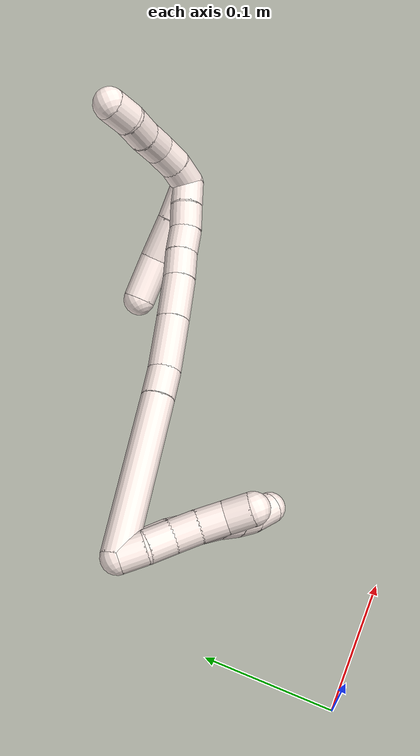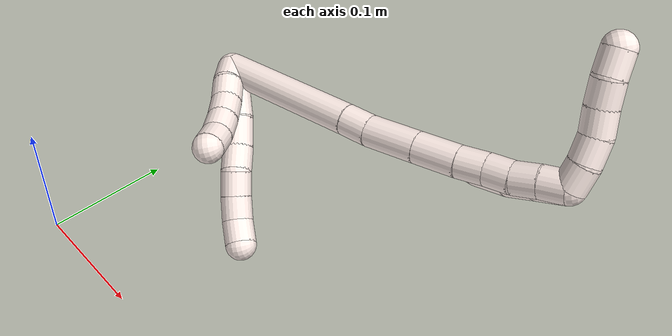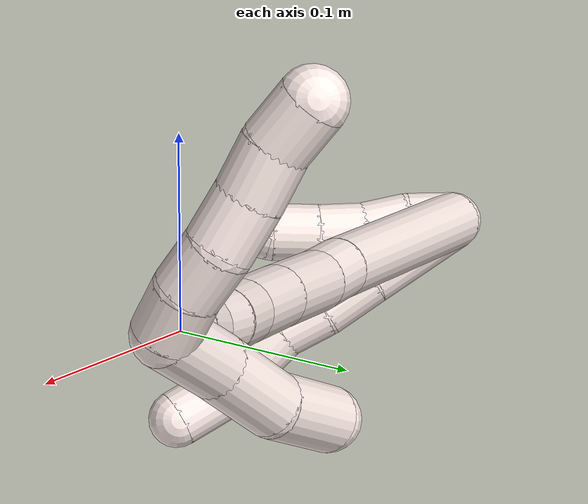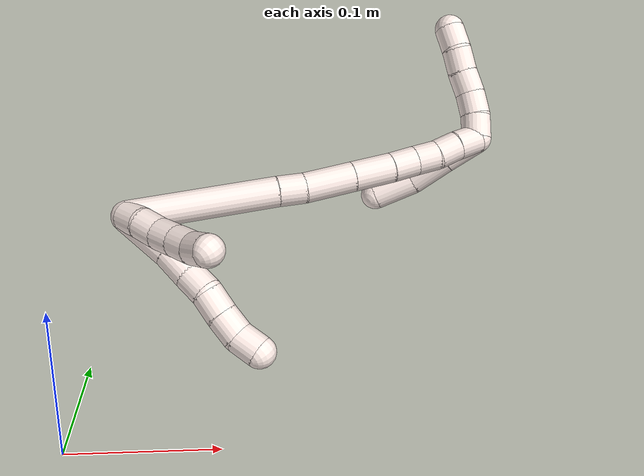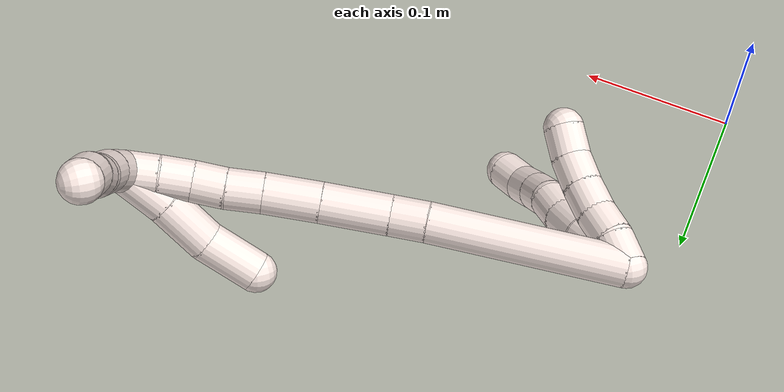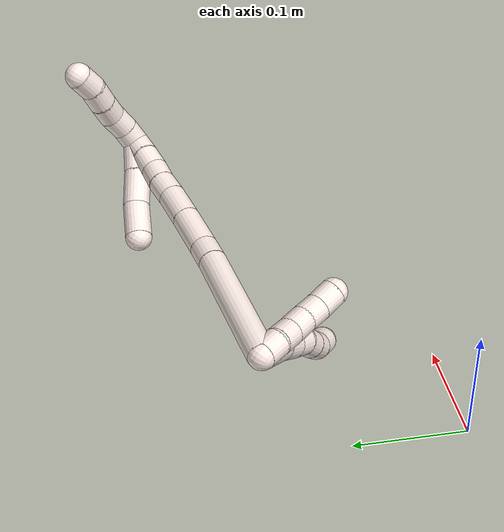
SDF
<sdf version="1.7">
 <world name="default">
  <model name="11">
   <static>0</static>
   <link name="11">
    <collision name="collision-cylinder-e_1_2_8">
     <pose>0.018134 -0.013308 0.0005 1.53324 0.937369 0.907434</pose>
     <geometry><cylinder><radius>0.0125</radius><length>0.044996</length></cylinder></geometry>
     <surface>
      <friction><ode><mu>1.16</mu><mu2>1.16</mu2><slip1>0</slip1><slip2>0</slip2></ode></friction>
      <contact><ode><kp>1e+06</kp><kd>1</kd><max_vel>0</max_vel><min_depth>0.001</min_depth></ode></contact>
     </surface>
    </collision>
    <visual name="visual-cylinder-e_1_2_8">
     <pose>0.018134 -0.013308 0.0005 1.53324 0.937369 0.907434</pose>
     <geometry><cylinder><radius>0.0125</radius><length>0.044996</length></cylinder></geometry>
     <material><ambient>1 0.933333 0.909804 1</ambient></material>
    </visual>
    <collision name="collision-cylinder-e_2_8_9">
     <pose>0.046304 -0.033647 -0.000119 1.72858 0.953782 1.08872</pose>
     <geometry><cylinder><radius>0.0125</radius><length>0.024613</length></cylinder></geometry>
     <surface>
      <friction><ode><mu>1.16</mu><mu2>1.16</mu2><slip1>0</slip1><slip2>0</slip2></ode></friction>
      <contact><ode><kp>1e+06</kp><kd>1</kd><max_vel>0</max_vel><min_depth>0.001</min_depth></ode></contact>
     </surface>
    </collision>
    <visual name="visual-cylinder-e_2_8_9">
     <pose>0.046304 -0.033647 -0.000119 1.72858 0.953782 1.08872</pose>
     <geometry><cylinder><radius>0.0125</radius><length>0.024613</length></cylinder></geometry>
     <material><ambient>1 0.933333 0.909804 1</ambient></material>
    </visual>
    <collision name="collision-cylinder-e_3_9_10">
     <pose>0.063861 -0.047433 -0.00249 1.75408 0.830527 0.974939</pose>
     <geometry><cylinder><radius>0.0125</radius><length>0.020369</length></cylinder></geometry>
     <surface>
      <friction><ode><mu>1.16</mu><mu2>1.16</mu2><slip1>0</slip1><slip2>0</slip2></ode></friction>
      <contact><ode><kp>1e+06</kp><kd>1</kd><max_vel>0</max_vel><min_depth>0.001</min_depth></ode></contact>
     </surface>
    </collision>
    <visual name="visual-cylinder-e_3_9_10">
     <pose>0.063861 -0.047433 -0.00249 1.75408 0.830527 0.974939</pose>
     <geometry><cylinder><radius>0.0125</radius><length>0.020369</length></cylinder></geometry>
     <material><ambient>1 0.933333 0.909804 1</ambient></material>
    </visual>
    <collision name="collision-cylinder-e_4_10_11">
     <pose>0.080431 -0.058124 -0.00536 1.96086 1.13123 1.51672</pose>
     <geometry><cylinder><radius>0.0125</radius><length>0.020005</length></cylinder></geometry>
     <surface>
      <friction><ode><mu>1.16</mu><mu2>1.16</mu2><slip1>0</slip1><slip2>0</slip2></ode></friction>
      <contact><ode><kp>1e+06</kp><kd>1</kd><max_vel>0</max_vel><min_depth>0.001</min_depth></ode></contact>
     </surface>
    </collision>
    <visual name="visual-cylinder-e_4_10_11">
     <pose>0.080431 -0.058124 -0.00536 1.96086 1.13123 1.51672</pose>
     <geometry><cylinder><radius>0.0125</radius><length>0.020005</length></cylinder></geometry>
     <material><ambient>1 0.933333 0.909804 1</ambient></material>
    </visual>
    <collision name="collision-cylinder-e_5_11_12">
     <pose>0.098552 -0.066193 -0.007882 1.78603 1.13448 1.33897</pose>
     <geometry><cylinder><radius>0.0125</radius><length>0.020014</length></cylinder></geometry>
     <surface>
      <friction><ode><mu>1.16</mu><mu2>1.16</mu2><slip1>0</slip1><slip2>0</slip2></ode></friction>
      <contact><ode><kp>1e+06</kp><kd>1</kd><max_vel>0</max_vel><min_depth>0.001</min_depth></ode></contact>
     </surface>
    </collision>
    <visual name="visual-cylinder-e_5_11_12">
     <pose>0.098552 -0.066193 -0.007882 1.78603 1.13448 1.33897</pose>
     <geometry><cylinder><radius>0.0125</radius><length>0.020014</length></cylinder></geometry>
     <material><ambient>1 0.933333 0.909804 1</ambient></material>
    </visual>
    <collision name="collision-cylinder-e_6_12_6">
     <pose>0.11527 -0.076715 -0.007949 1.44063 0.870486 0.774908</pose>
     <geometry><cylinder><radius>0.0125</radius><length>0.020003</length></cylinder></geometry>
     <surface>
      <friction><ode><mu>1.16</mu><mu2>1.16</mu2><slip1>0</slip1><slip2>0</slip2></ode></friction>
      <contact><ode><kp>1e+06</kp><kd>1</kd><max_vel>0</max_vel><min_depth>0.001</min_depth></ode></contact>
     </surface>
    </collision>
    <visual name="visual-cylinder-e_6_12_6">
     <pose>0.11527 -0.076715 -0.007949 1.44063 0.870486 0.774908</pose>
     <geometry><cylinder><radius>0.0125</radius><length>0.020003</length></cylinder></geometry>
     <material><ambient>1 0.933333 0.909804 1</ambient></material>
    </visual>
    <collision name="collision-cylinder-e_1_2_13">
     <pose>0.003666 -0.009277 -0.000703 1.64637 0.375312 0.404037</pose>
     <geometry><cylinder><radius>0.0125</radius><length>0.02</length></cylinder></geometry>
     <surface>
      <friction><ode><mu>1.16</mu><mu2>1.16</mu2><slip1>0</slip1><slip2>0</slip2></ode></friction>
      <contact><ode><kp>1e+06</kp><kd>1</kd><max_vel>0</max_vel><min_depth>0.001</min_depth></ode></contact>
     </surface>
    </collision>
    <visual name="visual-cylinder-e_1_2_13">
     <pose>0.003666 -0.009277 -0.000703 1.64637 0.375312 0.404037</pose>
     <geometry><cylinder><radius>0.0125</radius><length>0.02</length></cylinder></geometry>
     <material><ambient>1 0.933333 0.909804 1</ambient></material>
    </visual>
    <collision name="collision-cylinder-e_2_13_14">
     <pose>0.012734 -0.026968 -0.001563 1.58963 0.57072 0.580975</pose>
     <geometry><cylinder><radius>0.0125</radius><length>0.02</length></cylinder></geometry>
     <surface>
      <friction><ode><mu>1.16</mu><mu2>1.16</mu2><slip1>0</slip1><slip2>0</slip2></ode></friction>
      <contact><ode><kp>1e+06</kp><kd>1</kd><max_vel>0</max_vel><min_depth>0.001</min_depth></ode></contact>
     </surface>
    </collision>
    <visual name="visual-cylinder-e_2_13_14">
     <pose>0.012734 -0.026968 -0.001563 1.58963 0.57072 0.580975</pose>
     <geometry><cylinder><radius>0.0125</radius><length>0.02</length></cylinder></geometry>
     <material><ambient>1 0.933333 0.909804 1</ambient></material>
    </visual>
    <collision name="collision-cylinder-e_3_14_15">
     <pose>0.021992 -0.044603 -0.002057 1.60713 0.39586 0.410111</pose>
     <geometry><cylinder><radius>0.0125</radius><length>0.02</length></cylinder></geometry>
     <surface>
      <friction><ode><mu>1.16</mu><mu2>1.16</mu2><slip1>0</slip1><slip2>0</slip2></ode></friction>
      <contact><ode><kp>1e+06</kp><kd>1</kd><max_vel>0</max_vel><min_depth>0.001</min_depth></ode></contact>
     </surface>
    </collision>
    <visual name="visual-cylinder-e_3_14_15">
     <pose>0.021992 -0.044603 -0.002057 1.60713 0.39586 0.410111</pose>
     <geometry><cylinder><radius>0.0125</radius><length>0.02</length></cylinder></geometry>
     <material><ambient>1 0.933333 0.909804 1</ambient></material>
    </visual>
    <collision name="collision-cylinder-e_4_15_16">
     <pose>0.029116 -0.063235 -0.00325 1.66168 0.332895 0.363945</pose>
     <geometry><cylinder><radius>0.0125</radius><length>0.02</length></cylinder></geometry>
     <surface>
      <friction><ode><mu>1.16</mu><mu2>1.16</mu2><slip1>0</slip1><slip2>0</slip2></ode></friction>
      <contact><ode><kp>1e+06</kp><kd>1</kd><max_vel>0</max_vel><min_depth>0.001</min_depth></ode></contact>
     </surface>
    </collision>
    <visual name="visual-cylinder-e_4_15_16">
     <pose>0.029116 -0.063235 -0.00325 1.66168 0.332895 0.363945</pose>
     <geometry><cylinder><radius>0.0125</radius><length>0.02</length></cylinder></geometry>
     <material><ambient>1 0.933333 0.909804 1</ambient></material>
    </visual>
    <collision name="collision-cylinder-e_5_16_5">
     <pose>0.033376 -0.082546 -0.005122 1.67294 0.09942 0.110112</pose>
     <geometry><cylinder><radius>0.0125</radius><length>0.02</length></cylinder></geometry>
     <surface>
      <friction><ode><mu>1.16</mu><mu2>1.16</mu2><slip1>0</slip1><slip2>0</slip2></ode></friction>
      <contact><ode><kp>1e+06</kp><kd>1</kd><max_vel>0</max_vel><min_depth>0.001</min_depth></ode></contact>
     </surface>
    </collision>
    <visual name="visual-cylinder-e_5_16_5">
     <pose>0.033376 -0.082546 -0.005122 1.67294 0.09942 0.110112</pose>
     <geometry><cylinder><radius>0.0125</radius><length>0.02</length></cylinder></geometry>
     <material><ambient>1 0.933333 0.909804 1</ambient></material>
    </visual>
    <collision name="collision-cylinder-e_1_2_17">
     <pose>0.021874 -0.028502 0.047864 0.537085 0.374158 0.104089</pose>
     <geometry><cylinder><radius>0.0125</radius><length>0.119696</length></cylinder></geometry>
     <surface>
      <friction><ode><mu>1.16</mu><mu2>1.16</mu2><slip1>0</slip1><slip2>0</slip2></ode></friction>
      <contact><ode><kp>1e+06</kp><kd>1</kd><max_vel>0</max_vel><min_depth>0.001</min_depth></ode></contact>
     </surface>
    </collision>
    <visual name="visual-cylinder-e_1_2_17">
     <pose>0.021874 -0.028502 0.047864 0.537085 0.374158 0.104089</pose>
     <geometry><cylinder><radius>0.0125</radius><length>0.119696</length></cylinder></geometry>
     <material><ambient>1 0.933333 0.909804 1</ambient></material>
    </visual>
    <collision name="collision-cylinder-e_2_17_18">
     <pose>0.048231 -0.061925 0.104581 0.507353 0.416746 0.109528</pose>
     <geometry><cylinder><radius>0.0125</radius><length>0.022153</length></cylinder></geometry>
     <surface>
      <friction><ode><mu>1.16</mu><mu2>1.16</mu2><slip1>0</slip1><slip2>0</slip2></ode></friction>
      <contact><ode><kp>1e+06</kp><kd>1</kd><max_vel>0</max_vel><min_depth>0.001</min_depth></ode></contact>
     </surface>
    </collision>
    <visual name="visual-cylinder-e_2_17_18">
     <pose>0.048231 -0.061925 0.104581 0.507353 0.416746 0.109528</pose>
     <geometry><cylinder><radius>0.0125</radius><length>0.022153</length></cylinder></geometry>
     <material><ambient>1 0.933333 0.909804 1</ambient></material>
    </visual>
    <collision name="collision-cylinder-e_3_18_19">
     <pose>0.05925 -0.075904 0.131052 0.474883 0.318646 0.077735</pose>
     <geometry><cylinder><radius>0.0125</radius><length>0.04172</length></cylinder></geometry>
     <surface>
      <friction><ode><mu>1.16</mu><mu2>1.16</mu2><slip1>0</slip1><slip2>0</slip2></ode></friction>
      <contact><ode><kp>1e+06</kp><kd>1</kd><max_vel>0</max_vel><min_depth>0.001</min_depth></ode></contact>
     </surface>
    </collision>
    <visual name="visual-cylinder-e_3_18_19">
     <pose>0.05925 -0.075904 0.131052 0.474883 0.318646 0.077735</pose>
     <geometry><cylinder><radius>0.0125</radius><length>0.04172</length></cylinder></geometry>
     <material><ambient>1 0.933333 0.909804 1</ambient></material>
    </visual>
    <collision name="collision-cylinder-e_4_19_20">
     <pose>0.0712 -0.092166 0.163215 0.459913 0.322016 0.076005</pose>
     <geometry><cylinder><radius>0.0125</radius><length>0.034222</length></cylinder></geometry>
     <surface>
      <friction><ode><mu>1.16</mu><mu2>1.16</mu2><slip1>0</slip1><slip2>0</slip2></ode></friction>
      <contact><ode><kp>1e+06</kp><kd>1</kd><max_vel>0</max_vel><min_depth>0.001</min_depth></ode></contact>
     </surface>
    </collision>
    <visual name="visual-cylinder-e_4_19_20">
     <pose>0.0712 -0.092166 0.163215 0.459913 0.322016 0.076005</pose>
     <geometry><cylinder><radius>0.0125</radius><length>0.034222</length></cylinder></geometry>
     <material><ambient>1 0.933333 0.909804 1</ambient></material>
    </visual>
    <collision name="collision-cylinder-e_5_20_21">
     <pose>0.079711 -0.103516 0.187507 0.402086 0.284316 0.05832</pose>
     <geometry><cylinder><radius>0.0125</radius><length>0.022071</length></cylinder></geometry>
     <surface>
      <friction><ode><mu>1.16</mu><mu2>1.16</mu2><slip1>0</slip1><slip2>0</slip2></ode></friction>
      <contact><ode><kp>1e+06</kp><kd>1</kd><max_vel>0</max_vel><min_depth>0.001</min_depth></ode></contact>
     </surface>
    </collision>
    <visual name="visual-cylinder-e_5_20_21">
     <pose>0.079711 -0.103516 0.187507 0.402086 0.284316 0.05832</pose>
     <geometry><cylinder><radius>0.0125</radius><length>0.022071</length></cylinder></geometry>
     <material><ambient>1 0.933333 0.909804 1</ambient></material>
    </visual>
    <collision name="collision-cylinder-e_6_21_22">
     <pose>0.085609 -0.112274 0.205679 0.500977 0.283945 0.07311</pose>
     <geometry><cylinder><radius>0.0125</radius><length>0.020008</length></cylinder></geometry>
     <surface>
      <friction><ode><mu>1.16</mu><mu2>1.16</mu2><slip1>0</slip1><slip2>0</slip2></ode></friction>
      <contact><ode><kp>1e+06</kp><kd>1</kd><max_vel>0</max_vel><min_depth>0.001</min_depth></ode></contact>
     </surface>
    </collision>
    <visual name="visual-cylinder-e_6_21_22">
     <pose>0.085609 -0.112274 0.205679 0.500977 0.283945 0.07311</pose>
     <geometry><cylinder><radius>0.0125</radius><length>0.020008</length></cylinder></geometry>
     <material><ambient>1 0.933333 0.909804 1</ambient></material>
    </visual>
    <collision name="collision-cylinder-e_7_22_23">
     <pose>0.089807 -0.120807 0.223204 0.406716 0.139809 0.028875</pose>
     <geometry><cylinder><radius>0.0125</radius><length>0.020015</length></cylinder></geometry>
     <surface>
      <friction><ode><mu>1.16</mu><mu2>1.16</mu2><slip1>0</slip1><slip2>0</slip2></ode></friction>
      <contact><ode><kp>1e+06</kp><kd>1</kd><max_vel>0</max_vel><min_depth>0.001</min_depth></ode></contact>
     </surface>
    </collision>
    <visual name="visual-cylinder-e_7_22_23">
     <pose>0.089807 -0.120807 0.223204 0.406716 0.139809 0.028875</pose>
     <geometry><cylinder><radius>0.0125</radius><length>0.020015</length></cylinder></geometry>
     <material><ambient>1 0.933333 0.909804 1</ambient></material>
    </visual>
    <collision name="collision-cylinder-e_8_23_1">
     <pose>0.093478 -0.128507 0.241342 0.396101 0.228376 0.046023</pose>
     <geometry><cylinder><radius>0.0125</radius><length>0.020113</length></cylinder></geometry>
     <surface>
      <friction><ode><mu>1.16</mu><mu2>1.16</mu2><slip1>0</slip1><slip2>0</slip2></ode></friction>
      <contact><ode><kp>1e+06</kp><kd>1</kd><max_vel>0</max_vel><min_depth>0.001</min_depth></ode></contact>
     </surface>
    </collision>
    <visual name="visual-cylinder-e_8_23_1">
     <pose>0.093478 -0.128507 0.241342 0.396101 0.228376 0.046023</pose>
     <geometry><cylinder><radius>0.0125</radius><length>0.020113</length></cylinder></geometry>
     <material><ambient>1 0.933333 0.909804 1</ambient></material>
    </visual>
    <collision name="collision-cylinder-e_1_1_24">
     <pose>0.097567 -0.120545 0.240089 -2.29045 0.115553 -0.253842</pose>
     <geometry><cylinder><radius>0.0125</radius><length>0.031434</length></cylinder></geometry>
     <surface>
      <friction><ode><mu>1.16</mu><mu2>1.16</mu2><slip1>0</slip1><slip2>0</slip2></ode></friction>
      <contact><ode><kp>1e+06</kp><kd>1</kd><max_vel>0</max_vel><min_depth>0.001</min_depth></ode></contact>
     </surface>
    </collision>
    <visual name="visual-cylinder-e_1_1_24">
     <pose>0.097567 -0.120545 0.240089 -2.29045 0.115553 -0.253842</pose>
     <geometry><cylinder><radius>0.0125</radius><length>0.031434</length></cylinder></geometry>
     <material><ambient>1 0.933333 0.909804 1</ambient></material>
    </visual>
    <collision name="collision-cylinder-e_2_24_25">
     <pose>0.102209 -0.095507 0.219863 -2.21249 0.168856 -0.334596</pose>
     <geometry><cylinder><radius>0.0125</radius><length>0.033678</length></cylinder></geometry>
     <surface>
      <friction><ode><mu>1.16</mu><mu2>1.16</mu2><slip1>0</slip1><slip2>0</slip2></ode></friction>
      <contact><ode><kp>1e+06</kp><kd>1</kd><max_vel>0</max_vel><min_depth>0.001</min_depth></ode></contact>
     </surface>
    </collision>
    <visual name="visual-cylinder-e_2_24_25">
     <pose>0.102209 -0.095507 0.219863 -2.21249 0.168856 -0.334596</pose>
     <geometry><cylinder><radius>0.0125</radius><length>0.033678</length></cylinder></geometry>
     <material><ambient>1 0.933333 0.909804 1</ambient></material>
    </visual>
    <collision name="collision-cylinder-e_3_25_4">
     <pose>0.103866 -0.069643 0.197885 -2.33495 -0.067273 0.157386</pose>
     <geometry><cylinder><radius>0.0125</radius><length>0.034888</length></cylinder></geometry>
     <surface>
      <friction><ode><mu>1.16</mu><mu2>1.16</mu2><slip1>0</slip1><slip2>0</slip2></ode></friction>
      <contact><ode><kp>1e+06</kp><kd>1</kd><max_vel>0</max_vel><min_depth>0.001</min_depth></ode></contact>
     </surface>
    </collision>
    <visual name="visual-cylinder-e_3_25_4">
     <pose>0.103866 -0.069643 0.197885 -2.33495 -0.067273 0.157386</pose>
     <geometry><cylinder><radius>0.0125</radius><length>0.034888</length></cylinder></geometry>
     <material><ambient>1 0.933333 0.909804 1</ambient></material>
    </visual>
    <collision name="collision-cylinder-e_1_1_26">
     <pose>0.087849 -0.132029 0.256498 -0.041997 -0.911726 0.020594</pose>
     <geometry><cylinder><radius>0.0125</radius><length>0.02</length></cylinder></geometry>
     <surface>
      <friction><ode><mu>1.16</mu><mu2>1.16</mu2><slip1>0</slip1><slip2>0</slip2></ode></friction>
      <contact><ode><kp>1e+06</kp><kd>1</kd><max_vel>0</max_vel><min_depth>0.001</min_depth></ode></contact>
     </surface>
    </collision>
    <visual name="visual-cylinder-e_1_1_26">
     <pose>0.087849 -0.132029 0.256498 -0.041997 -0.911726 0.020594</pose>
     <geometry><cylinder><radius>0.0125</radius><length>0.02</length></cylinder></geometry>
     <material><ambient>1 0.933333 0.909804 1</ambient></material>
    </visual>
    <collision name="collision-cylinder-e_2_26_27">
     <pose>0.071577 -0.129949 0.267782 -0.339179 -0.991078 0.184586</pose>
     <geometry><cylinder><radius>0.0125</radius><length>0.02</length></cylinder></geometry>
     <surface>
      <friction><ode><mu>1.16</mu><mu2>1.16</mu2><slip1>0</slip1><slip2>0</slip2></ode></friction>
      <contact><ode><kp>1e+06</kp><kd>1</kd><max_vel>0</max_vel><min_depth>0.001</min_depth></ode></contact>
     </surface>
    </collision>
    <visual name="visual-cylinder-e_2_26_27">
     <pose>0.071577 -0.129949 0.267782 -0.339179 -0.991078 0.184586</pose>
     <geometry><cylinder><radius>0.0125</radius><length>0.02</length></cylinder></geometry>
     <material><ambient>1 0.933333 0.909804 1</ambient></material>
    </visual>
    <collision name="collision-cylinder-e_3_27_28">
     <pose>0.053834 -0.126705 0.276118 -0.421438 -1.21601 0.29555</pose>
     <geometry><cylinder><radius>0.0125</radius><length>0.02</length></cylinder></geometry>
     <surface>
      <friction><ode><mu>1.16</mu><mu2>1.16</mu2><slip1>0</slip1><slip2>0</slip2></ode></friction>
      <contact><ode><kp>1e+06</kp><kd>1</kd><max_vel>0</max_vel><min_depth>0.001</min_depth></ode></contact>
     </surface>
    </collision>
    <visual name="visual-cylinder-e_3_27_28">
     <pose>0.053834 -0.126705 0.276118 -0.421438 -1.21601 0.29555</pose>
     <geometry><cylinder><radius>0.0125</radius><length>0.02</length></cylinder></geometry>
     <material><ambient>1 0.933333 0.909804 1</ambient></material>
    </visual>
    <collision name="collision-cylinder-e_4_28_29">
     <pose>0.035196 -0.124562 0.282991 -0.1926 -1.18386 0.129716</pose>
     <geometry><cylinder><radius>0.0125</radius><length>0.02</length></cylinder></geometry>
     <surface>
      <friction><ode><mu>1.16</mu><mu2>1.16</mu2><slip1>0</slip1><slip2>0</slip2></ode></friction>
      <contact><ode><kp>1e+06</kp><kd>1</kd><max_vel>0</max_vel><min_depth>0.001</min_depth></ode></contact>
     </surface>
    </collision>
    <visual name="visual-cylinder-e_4_28_29">
     <pose>0.035196 -0.124562 0.282991 -0.1926 -1.18386 0.129716</pose>
     <geometry><cylinder><radius>0.0125</radius><length>0.02</length></cylinder></geometry>
     <material><ambient>1 0.933333 0.909804 1</ambient></material>
    </visual>
    <collision name="collision-cylinder-e_5_29_3">
     <pose>0.01743 -0.12129 0.291295 -0.50607 -1.017 0.286286</pose>
     <geometry><cylinder><radius>0.0125</radius><length>0.02</length></cylinder></geometry>
     <surface>
      <friction><ode><mu>1.16</mu><mu2>1.16</mu2><slip1>0</slip1><slip2>0</slip2></ode></friction>
      <contact><ode><kp>1e+06</kp><kd>1</kd><max_vel>0</max_vel><min_depth>0.001</min_depth></ode></contact>
     </surface>
    </collision>
    <visual name="visual-cylinder-e_5_29_3">
     <pose>0.01743 -0.12129 0.291295 -0.50607 -1.017 0.286286</pose>
     <geometry><cylinder><radius>0.0125</radius><length>0.02</length></cylinder></geometry>
     <material><ambient>1 0.933333 0.909804 1</ambient></material>
    </visual>
    <collision name="collision-sphere-3">
     <pose>0.008925 -0.118741 0.295895 0 -0 0</pose>
     <geometry><sphere><radius>0.0125</radius></sphere></geometry>
     <surface>
      <friction><ode><mu>1.16</mu><mu2>1.16</mu2><slip1>0</slip1><slip2>0</slip2></ode></friction>
      <contact><ode><kp>1e+06</kp><kd>1</kd><max_vel>0</max_vel><min_depth>0.001</min_depth></ode></contact>
     </surface>
    </collision>
    <visual name="visual-sphere-3">
     <pose>0.008925 -0.118741 0.295895 0 -0 0</pose>
     <geometry><sphere><radius>0.0125</radius></sphere></geometry>
     <material><ambient>1 0.933333 0.909804 1</ambient></material>
    </visual>
    <collision name="collision-sphere-29">
     <pose>0.025935 -0.12384 0.286695 0 -0 0</pose>
     <geometry><sphere><radius>0.0125</radius></sphere></geometry>
     <surface>
      <friction><ode><mu>1.16</mu><mu2>1.16</mu2><slip1>0</slip1><slip2>0</slip2></ode></friction>
      <contact><ode><kp>1e+06</kp><kd>1</kd><max_vel>0</max_vel><min_depth>0.001</min_depth></ode></contact>
     </surface>
    </collision>
    <visual name="visual-sphere-29">
     <pose>0.025935 -0.12384 0.286695 0 -0 0</pose>
     <geometry><sphere><radius>0.0125</radius></sphere></geometry>
     <material><ambient>1 0.933333 0.909804 1</ambient></material>
    </visual>
    <collision name="collision-sphere-28">
     <pose>0.044457 -0.125284 0.279288 0 -0 0</pose>
     <geometry><sphere><radius>0.0125</radius></sphere></geometry>
     <surface>
      <friction><ode><mu>1.16</mu><mu2>1.16</mu2><slip1>0</slip1><slip2>0</slip2></ode></friction>
      <contact><ode><kp>1e+06</kp><kd>1</kd><max_vel>0</max_vel><min_depth>0.001</min_depth></ode></contact>
     </surface>
    </collision>
    <visual name="visual-sphere-28">
     <pose>0.044457 -0.125284 0.279288 0 -0 0</pose>
     <geometry><sphere><radius>0.0125</radius></sphere></geometry>
     <material><ambient>1 0.933333 0.909804 1</ambient></material>
    </visual>
    <collision name="collision-sphere-27">
     <pose>0.063211 -0.128127 0.272948 0 -0 0</pose>
     <geometry><sphere><radius>0.0125</radius></sphere></geometry>
     <surface>
      <friction><ode><mu>1.16</mu><mu2>1.16</mu2><slip1>0</slip1><slip2>0</slip2></ode></friction>
      <contact><ode><kp>1e+06</kp><kd>1</kd><max_vel>0</max_vel><min_depth>0.001</min_depth></ode></contact>
     </surface>
    </collision>
    <visual name="visual-sphere-27">
     <pose>0.063211 -0.128127 0.272948 0 -0 0</pose>
     <geometry><sphere><radius>0.0125</radius></sphere></geometry>
     <material><ambient>1 0.933333 0.909804 1</ambient></material>
    </visual>
    <collision name="collision-sphere-26">
     <pose>0.079944 -0.131772 0.262616 0 -0 0</pose>
     <geometry><sphere><radius>0.0125</radius></sphere></geometry>
     <surface>
      <friction><ode><mu>1.16</mu><mu2>1.16</mu2><slip1>0</slip1><slip2>0</slip2></ode></friction>
      <contact><ode><kp>1e+06</kp><kd>1</kd><max_vel>0</max_vel><min_depth>0.001</min_depth></ode></contact>
     </surface>
    </collision>
    <visual name="visual-sphere-26">
     <pose>0.079944 -0.131772 0.262616 0 -0 0</pose>
     <geometry><sphere><radius>0.0125</radius></sphere></geometry>
     <material><ambient>1 0.933333 0.909804 1</ambient></material>
    </visual>
    <collision name="collision-sphere-4">
     <pose>0.102694 -0.057078 0.185842 0 -0 0</pose>
     <geometry><sphere><radius>0.0125</radius></sphere></geometry>
     <surface>
      <friction><ode><mu>1.16</mu><mu2>1.16</mu2><slip1>0</slip1><slip2>0</slip2></ode></friction>
      <contact><ode><kp>1e+06</kp><kd>1</kd><max_vel>0</max_vel><min_depth>0.001</min_depth></ode></contact>
     </surface>
    </collision>
    <visual name="visual-sphere-4">
     <pose>0.102694 -0.057078 0.185842 0 -0 0</pose>
     <geometry><sphere><radius>0.0125</radius></sphere></geometry>
     <material><ambient>1 0.933333 0.909804 1</ambient></material>
    </visual>
    <collision name="collision-sphere-25">
     <pose>0.105039 -0.082209 0.209928 0 -0 0</pose>
     <geometry><sphere><radius>0.0125</radius></sphere></geometry>
     <surface>
      <friction><ode><mu>1.16</mu><mu2>1.16</mu2><slip1>0</slip1><slip2>0</slip2></ode></friction>
      <contact><ode><kp>1e+06</kp><kd>1</kd><max_vel>0</max_vel><min_depth>0.001</min_depth></ode></contact>
     </surface>
    </collision>
    <visual name="visual-sphere-25">
     <pose>0.105039 -0.082209 0.209928 0 -0 0</pose>
     <geometry><sphere><radius>0.0125</radius></sphere></geometry>
     <material><ambient>1 0.933333 0.909804 1</ambient></material>
    </visual>
    <collision name="collision-sphere-24">
     <pose>0.099379 -0.108804 0.229799 0 -0 0</pose>
     <geometry><sphere><radius>0.0125</radius></sphere></geometry>
     <surface>
      <friction><ode><mu>1.16</mu><mu2>1.16</mu2><slip1>0</slip1><slip2>0</slip2></ode></friction>
      <contact><ode><kp>1e+06</kp><kd>1</kd><max_vel>0</max_vel><min_depth>0.001</min_depth></ode></contact>
     </surface>
    </collision>
    <visual name="visual-sphere-24">
     <pose>0.099379 -0.108804 0.229799 0 -0 0</pose>
     <geometry><sphere><radius>0.0125</radius></sphere></geometry>
     <material><ambient>1 0.933333 0.909804 1</ambient></material>
    </visual>
    <collision name="collision-sphere-1">
     <pose>0.095755 -0.132286 0.250379 0 -0 0</pose>
     <geometry><sphere><radius>0.0125</radius></sphere></geometry>
     <surface>
      <friction><ode><mu>1.16</mu><mu2>1.16</mu2><slip1>0</slip1><slip2>0</slip2></ode></friction>
      <contact><ode><kp>1e+06</kp><kd>1</kd><max_vel>0</max_vel><min_depth>0.001</min_depth></ode></contact>
     </surface>
    </collision>
    <visual name="visual-sphere-1">
     <pose>0.095755 -0.132286 0.250379 0 -0 0</pose>
     <geometry><sphere><radius>0.0125</radius></sphere></geometry>
     <material><ambient>1 0.933333 0.909804 1</ambient></material>
    </visual>
    <collision name="collision-sphere-23">
     <pose>0.091201 -0.124727 0.232305 0 -0 0</pose>
     <geometry><sphere><radius>0.0125</radius></sphere></geometry>
     <surface>
      <friction><ode><mu>1.16</mu><mu2>1.16</mu2><slip1>0</slip1><slip2>0</slip2></ode></friction>
      <contact><ode><kp>1e+06</kp><kd>1</kd><max_vel>0</max_vel><min_depth>0.001</min_depth></ode></contact>
     </surface>
    </collision>
    <visual name="visual-sphere-23">
     <pose>0.091201 -0.124727 0.232305 0 -0 0</pose>
     <geometry><sphere><radius>0.0125</radius></sphere></geometry>
     <material><ambient>1 0.933333 0.909804 1</ambient></material>
    </visual>
    <collision name="collision-sphere-22">
     <pose>0.088412 -0.116887 0.214102 0 -0 0</pose>
     <geometry><sphere><radius>0.0125</radius></sphere></geometry>
     <surface>
      <friction><ode><mu>1.16</mu><mu2>1.16</mu2><slip1>0</slip1><slip2>0</slip2></ode></friction>
      <contact><ode><kp>1e+06</kp><kd>1</kd><max_vel>0</max_vel><min_depth>0.001</min_depth></ode></contact>
     </surface>
    </collision>
    <visual name="visual-sphere-22">
     <pose>0.088412 -0.116887 0.214102 0 -0 0</pose>
     <geometry><sphere><radius>0.0125</radius></sphere></geometry>
     <material><ambient>1 0.933333 0.909804 1</ambient></material>
    </visual>
    <collision name="collision-sphere-21">
     <pose>0.082807 -0.107662 0.197255 0 -0 0</pose>
     <geometry><sphere><radius>0.0125</radius></sphere></geometry>
     <surface>
      <friction><ode><mu>1.16</mu><mu2>1.16</mu2><slip1>0</slip1><slip2>0</slip2></ode></friction>
      <contact><ode><kp>1e+06</kp><kd>1</kd><max_vel>0</max_vel><min_depth>0.001</min_depth></ode></contact>
     </surface>
    </collision>
    <visual name="visual-sphere-21">
     <pose>0.082807 -0.107662 0.197255 0 -0 0</pose>
     <geometry><sphere><radius>0.0125</radius></sphere></geometry>
     <material><ambient>1 0.933333 0.909804 1</ambient></material>
    </visual>
    <collision name="collision-sphere-12">
     <pose>0.107622 -0.070324 -0.008785 0 -0 0</pose>
     <geometry><sphere><radius>0.0125</radius></sphere></geometry>
     <surface>
      <friction><ode><mu>1.16</mu><mu2>1.16</mu2><slip1>0</slip1><slip2>0</slip2></ode></friction>
      <contact><ode><kp>1e+06</kp><kd>1</kd><max_vel>0</max_vel><min_depth>0.001</min_depth></ode></contact>
     </surface>
    </collision>
    <visual name="visual-sphere-12">
     <pose>0.107622 -0.070324 -0.008785 0 -0 0</pose>
     <geometry><sphere><radius>0.0125</radius></sphere></geometry>
     <material><ambient>1 0.933333 0.909804 1</ambient></material>
    </visual>
    <collision name="collision-sphere-11">
     <pose>0.089483 -0.062061 -0.006979 0 -0 0</pose>
     <geometry><sphere><radius>0.0125</radius></sphere></geometry>
     <surface>
      <friction><ode><mu>1.16</mu><mu2>1.16</mu2><slip1>0</slip1><slip2>0</slip2></ode></friction>
      <contact><ode><kp>1e+06</kp><kd>1</kd><max_vel>0</max_vel><min_depth>0.001</min_depth></ode></contact>
     </surface>
    </collision>
    <visual name="visual-sphere-11">
     <pose>0.089483 -0.062061 -0.006979 0 -0 0</pose>
     <geometry><sphere><radius>0.0125</radius></sphere></geometry>
     <material><ambient>1 0.933333 0.909804 1</ambient></material>
    </visual>
    <collision name="collision-sphere-10">
     <pose>0.071379 -0.054187 -0.003742 0 -0 0</pose>
     <geometry><sphere><radius>0.0125</radius></sphere></geometry>
     <surface>
      <friction><ode><mu>1.16</mu><mu2>1.16</mu2><slip1>0</slip1><slip2>0</slip2></ode></friction>
      <contact><ode><kp>1e+06</kp><kd>1</kd><max_vel>0</max_vel><min_depth>0.001</min_depth></ode></contact>
     </surface>
    </collision>
    <visual name="visual-sphere-10">
     <pose>0.071379 -0.054187 -0.003742 0 -0 0</pose>
     <geometry><sphere><radius>0.0125</radius></sphere></geometry>
     <material><ambient>1 0.933333 0.909804 1</ambient></material>
    </visual>
    <collision name="collision-sphere-9">
     <pose>0.056342 -0.040679 -0.001238 0 -0 0</pose>
     <geometry><sphere><radius>0.0125</radius></sphere></geometry>
     <surface>
      <friction><ode><mu>1.16</mu><mu2>1.16</mu2><slip1>0</slip1><slip2>0</slip2></ode></friction>
      <contact><ode><kp>1e+06</kp><kd>1</kd><max_vel>0</max_vel><min_depth>0.001</min_depth></ode></contact>
     </surface>
    </collision>
    <visual name="visual-sphere-9">
     <pose>0.056342 -0.040679 -0.001238 0 -0 0</pose>
     <geometry><sphere><radius>0.0125</radius></sphere></geometry>
     <material><ambient>1 0.933333 0.909804 1</ambient></material>
    </visual>
    <collision name="collision-sphere-2">
     <geometry><sphere><radius>0.0125</radius></sphere></geometry>
     <surface>
      <friction><ode><mu>1.16</mu><mu2>1.16</mu2><slip1>0</slip1><slip2>0</slip2></ode></friction>
      <contact><ode><kp>1e+06</kp><kd>1</kd><max_vel>0</max_vel><min_depth>0.001</min_depth></ode></contact>
     </surface>
    </collision>
    <visual name="visual-sphere-2">
     <geometry><sphere><radius>0.0125</radius></sphere></geometry>
     <material><ambient>1 0.933333 0.909804 1</ambient></material>
    </visual>
    <collision name="collision-sphere-19">
     <pose>0.065785 -0.084961 0.148669 0 -0 0</pose>
     <geometry><sphere><radius>0.0125</radius></sphere></geometry>
     <surface>
      <friction><ode><mu>1.16</mu><mu2>1.16</mu2><slip1>0</slip1><slip2>0</slip2></ode></friction>
      <contact><ode><kp>1e+06</kp><kd>1</kd><max_vel>0</max_vel><min_depth>0.001</min_depth></ode></contact>
     </surface>
    </collision>
    <visual name="visual-sphere-19">
     <pose>0.065785 -0.084961 0.148669 0 -0 0</pose>
     <geometry><sphere><radius>0.0125</radius></sphere></geometry>
     <material><ambient>1 0.933333 0.909804 1</ambient></material>
    </visual>
    <collision name="collision-sphere-8">
     <pose>0.036267 -0.026615 0.001 0 -0 0</pose>
     <geometry><sphere><radius>0.0125</radius></sphere></geometry>
     <surface>
      <friction><ode><mu>1.16</mu><mu2>1.16</mu2><slip1>0</slip1><slip2>0</slip2></ode></friction>
      <contact><ode><kp>1e+06</kp><kd>1</kd><max_vel>0</max_vel><min_depth>0.001</min_depth></ode></contact>
     </surface>
    </collision>
    <visual name="visual-sphere-8">
     <pose>0.036267 -0.026615 0.001 0 -0 0</pose>
     <geometry><sphere><radius>0.0125</radius></sphere></geometry>
     <material><ambient>1 0.933333 0.909804 1</ambient></material>
    </visual>
    <collision name="collision-sphere-6">
     <pose>0.122917 -0.083106 -0.007112 0 -0 0</pose>
     <geometry><sphere><radius>0.0125</radius></sphere></geometry>
     <surface>
      <friction><ode><mu>1.16</mu><mu2>1.16</mu2><slip1>0</slip1><slip2>0</slip2></ode></friction>
      <contact><ode><kp>1e+06</kp><kd>1</kd><max_vel>0</max_vel><min_depth>0.001</min_depth></ode></contact>
     </surface>
    </collision>
    <visual name="visual-sphere-6">
     <pose>0.122917 -0.083106 -0.007112 0 -0 0</pose>
     <geometry><sphere><radius>0.0125</radius></sphere></geometry>
     <material><ambient>1 0.933333 0.909804 1</ambient></material>
    </visual>
    <collision name="collision-sphere-13">
     <pose>0.007331 -0.018555 -0.001405 0 -0 0</pose>
     <geometry><sphere><radius>0.0125</radius></sphere></geometry>
     <surface>
      <friction><ode><mu>1.16</mu><mu2>1.16</mu2><slip1>0</slip1><slip2>0</slip2></ode></friction>
      <contact><ode><kp>1e+06</kp><kd>1</kd><max_vel>0</max_vel><min_depth>0.001</min_depth></ode></contact>
     </surface>
    </collision>
    <visual name="visual-sphere-13">
     <pose>0.007331 -0.018555 -0.001405 0 -0 0</pose>
     <geometry><sphere><radius>0.0125</radius></sphere></geometry>
     <material><ambient>1 0.933333 0.909804 1</ambient></material>
    </visual>
    <collision name="collision-sphere-14">
     <pose>0.018136 -0.035382 -0.001722 0 -0 0</pose>
     <geometry><sphere><radius>0.0125</radius></sphere></geometry>
     <surface>
      <friction><ode><mu>1.16</mu><mu2>1.16</mu2><slip1>0</slip1><slip2>0</slip2></ode></friction>
      <contact><ode><kp>1e+06</kp><kd>1</kd><max_vel>0</max_vel><min_depth>0.001</min_depth></ode></contact>
     </surface>
    </collision>
    <visual name="visual-sphere-14">
     <pose>0.018136 -0.035382 -0.001722 0 -0 0</pose>
     <geometry><sphere><radius>0.0125</radius></sphere></geometry>
     <material><ambient>1 0.933333 0.909804 1</ambient></material>
    </visual>
    <collision name="collision-sphere-15">
     <pose>0.025848 -0.053823 -0.002392 0 -0 0</pose>
     <geometry><sphere><radius>0.0125</radius></sphere></geometry>
     <surface>
      <friction><ode><mu>1.16</mu><mu2>1.16</mu2><slip1>0</slip1><slip2>0</slip2></ode></friction>
      <contact><ode><kp>1e+06</kp><kd>1</kd><max_vel>0</max_vel><min_depth>0.001</min_depth></ode></contact>
     </surface>
    </collision>
    <visual name="visual-sphere-15">
     <pose>0.025848 -0.053823 -0.002392 0 -0 0</pose>
     <geometry><sphere><radius>0.0125</radius></sphere></geometry>
     <material><ambient>1 0.933333 0.909804 1</ambient></material>
    </visual>
    <collision name="collision-sphere-16">
     <pose>0.032384 -0.072647 -0.004108 0 -0 0</pose>
     <geometry><sphere><radius>0.0125</radius></sphere></geometry>
     <surface>
      <friction><ode><mu>1.16</mu><mu2>1.16</mu2><slip1>0</slip1><slip2>0</slip2></ode></friction>
      <contact><ode><kp>1e+06</kp><kd>1</kd><max_vel>0</max_vel><min_depth>0.001</min_depth></ode></contact>
     </surface>
    </collision>
    <visual name="visual-sphere-16">
     <pose>0.032384 -0.072647 -0.004108 0 -0 0</pose>
     <geometry><sphere><radius>0.0125</radius></sphere></geometry>
     <material><ambient>1 0.933333 0.909804 1</ambient></material>
    </visual>
    <collision name="collision-sphere-5">
     <pose>0.034369 -0.092445 -0.006137 0 -0 0</pose>
     <geometry><sphere><radius>0.0125</radius></sphere></geometry>
     <surface>
      <friction><ode><mu>1.16</mu><mu2>1.16</mu2><slip1>0</slip1><slip2>0</slip2></ode></friction>
      <contact><ode><kp>1e+06</kp><kd>1</kd><max_vel>0</max_vel><min_depth>0.001</min_depth></ode></contact>
     </surface>
    </collision>
    <visual name="visual-sphere-5">
     <pose>0.034369 -0.092445 -0.006137 0 -0 0</pose>
     <geometry><sphere><radius>0.0125</radius></sphere></geometry>
     <material><ambient>1 0.933333 0.909804 1</ambient></material>
    </visual>
    <collision name="collision-sphere-17">
     <pose>0.043748 -0.057004 0.095729 0 -0 0</pose>
     <geometry><sphere><radius>0.0125</radius></sphere></geometry>
     <surface>
      <friction><ode><mu>1.16</mu><mu2>1.16</mu2><slip1>0</slip1><slip2>0</slip2></ode></friction>
      <contact><ode><kp>1e+06</kp><kd>1</kd><max_vel>0</max_vel><min_depth>0.001</min_depth></ode></contact>
     </surface>
    </collision>
    <visual name="visual-sphere-17">
     <pose>0.043748 -0.057004 0.095729 0 -0 0</pose>
     <geometry><sphere><radius>0.0125</radius></sphere></geometry>
     <material><ambient>1 0.933333 0.909804 1</ambient></material>
    </visual>
    <collision name="collision-sphere-18">
     <pose>0.052715 -0.066846 0.113434 0 -0 0</pose>
     <geometry><sphere><radius>0.0125</radius></sphere></geometry>
     <surface>
      <friction><ode><mu>1.16</mu><mu2>1.16</mu2><slip1>0</slip1><slip2>0</slip2></ode></friction>
      <contact><ode><kp>1e+06</kp><kd>1</kd><max_vel>0</max_vel><min_depth>0.001</min_depth></ode></contact>
     </surface>
    </collision>
    <visual name="visual-sphere-18">
     <pose>0.052715 -0.066846 0.113434 0 -0 0</pose>
     <geometry><sphere><radius>0.0125</radius></sphere></geometry>
     <material><ambient>1 0.933333 0.909804 1</ambient></material>
    </visual>
    <collision name="collision-sphere-20">
     <pose>0.076616 -0.099371 0.17776 0 -0 0</pose>
     <geometry><sphere><radius>0.0125</radius></sphere></geometry>
     <surface>
      <friction><ode><mu>1.16</mu><mu2>1.16</mu2><slip1>0</slip1><slip2>0</slip2></ode></friction>
      <contact><ode><kp>1e+06</kp><kd>1</kd><max_vel>0</max_vel><min_depth>0.001</min_depth></ode></contact>
     </surface>
    </collision>
    <visual name="visual-sphere-20">
     <pose>0.076616 -0.099371 0.17776 0 -0 0</pose>
     <geometry><sphere><radius>0.0125</radius></sphere></geometry>
     <material><ambient>1 0.933333 0.909804 1</ambient></material>
    </visual>
    <inertial>
     <pose>0.056476 -0.071616 0.113753 0 -0 0</pose>
     <mass>0.75</mass>
     <inertia><ixx>0.000222</ixx><ixy>0</ixy><ixz>0</ixz><iyy>0.000167</iyy><iyz>0</iyz><izz>3e-05</izz></inertia>
    </inertial>
   </link>
   <pose>0.022947 0.172056 0.090428 -0.925589 1.08132 -0.172759</pose>
  </model>
 </world>
</sdf>
